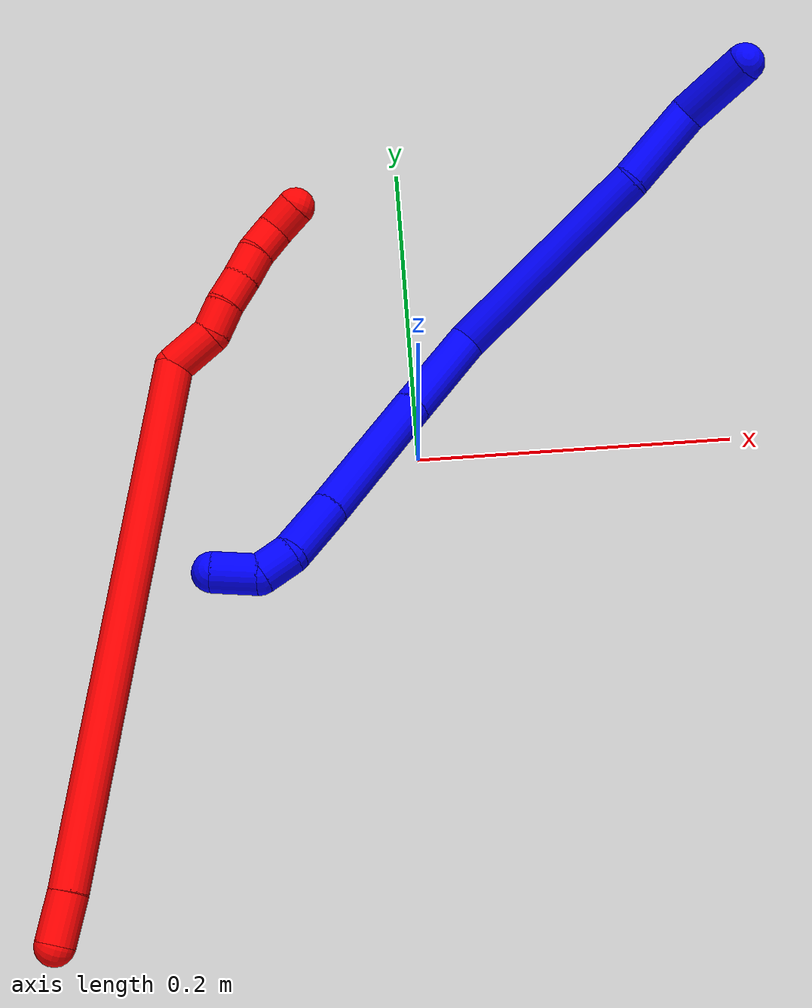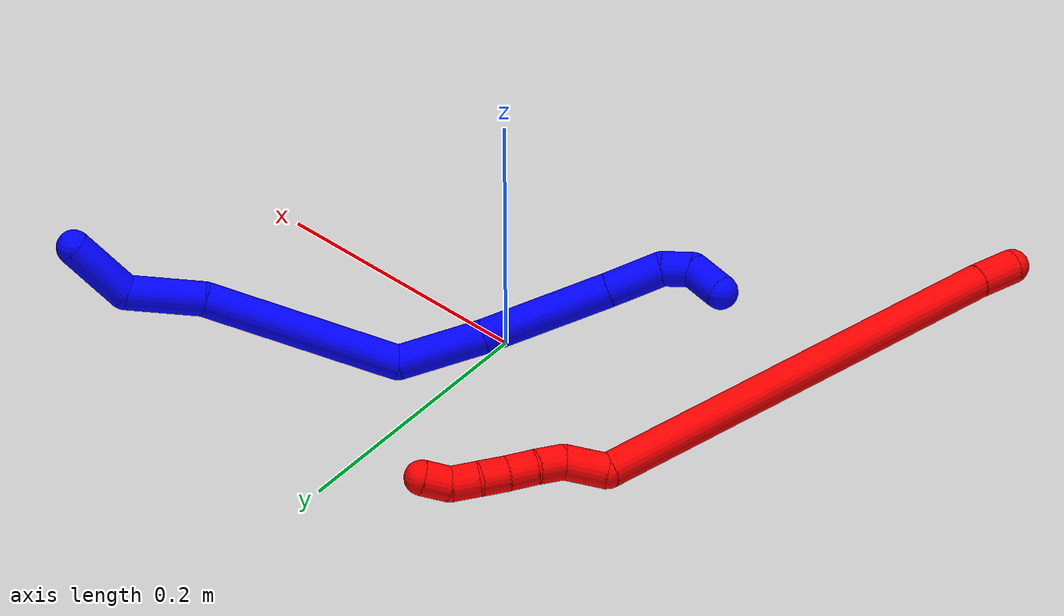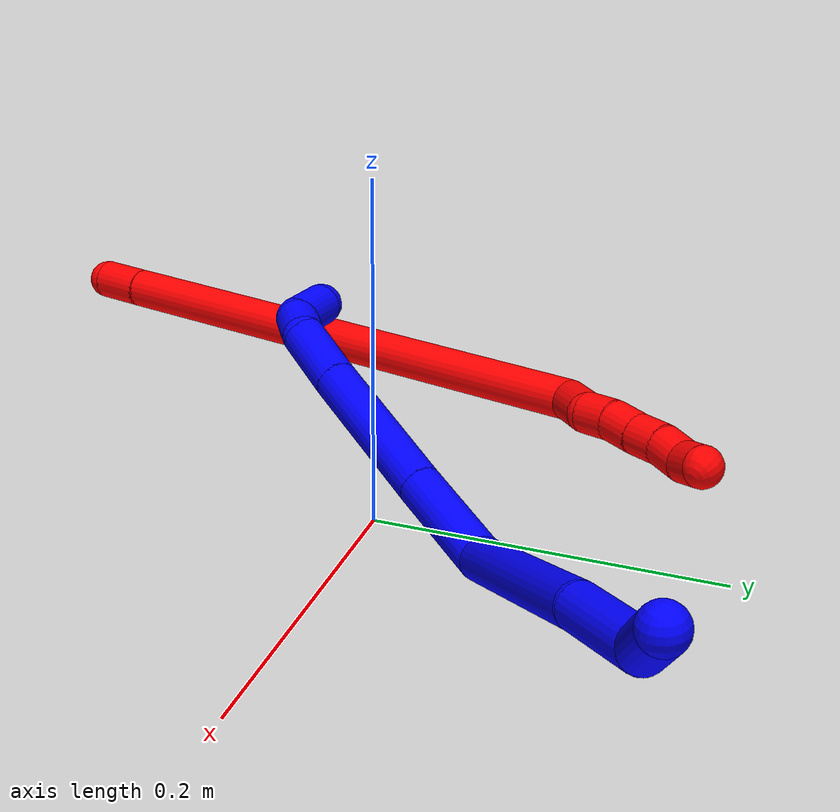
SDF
<sdf version="1.7">
 <world name="default">
  <plugin name="TubeGeneratorPlugin" filename="libtube_generator_plugin.so"/>
  <model name="photoneo_s_sensor">
   <static>1</static>
   <pose>0 0 2 1.57079 1.57079 3.14159</pose>
   <link name="link">
    <inertial><mass>0.1</mass></inertial>
    <sensor name="sensor" type="depth">
     <update_rate>30</update_rate>
     <camera>
      <horizontal_fov>1.22</horizontal_fov>
      <image><width>1920</width><height>1200</height><format>B8G8R8</format></image>
      <clip><near>0.1</near><far>4</far></clip>
      <depth_camera><output>points</output></depth_camera>
     </camera>
     <plugin name="camera_plugin" filename="libgazebo_ros_depth_camera.so">
      <baseline>0.2</baseline>
      <alwaysOn>1</alwaysOn>
      <updateRate>0.0</updateRate>
      <cameraName>camera_ir</cameraName>
      <imageTopicName>/camera/color/image_raw</imageTopicName>
      <cameraInfoTopicName>/camera/color/camera_info</cameraInfoTopicName>
      <depthImageTopicName>/camera/depth/image_raw</depthImageTopicName>
      <depthImageCameraInfoTopicName>/camera/depth/camera_info</depthImageCameraInfoTopicName>
      <pointCloudTopicName>/camera/depth/points</pointCloudTopicName>
      <frameName>fr_optical</frameName>
      <pointCloudCutoff>0.1</pointCloudCutoff>
      <pointCloudCutoffMax>2.0</pointCloudCutoffMax>
      <distortionK1>0</distortionK1>
      <distortionK2>0</distortionK2>
      <distortionK3>0</distortionK3>
      <distortionT1>0</distortionT1>
      <distortionT2>0</distortionT2>
      <CxPrime>0</CxPrime>
      <Cx>0</Cx>
      <Cy>0</Cy>
      <focalLength>0</focalLength>
      <hackBaseline>0</hackBaseline>
     </plugin>
    </sensor>
   </link>
  </model>
  <gravity>0 0 -9.8</gravity>
  <magnetic_field>6e-06 2.3e-05 -4.2e-05</magnetic_field>
  <atmosphere type="adiabatic"/>
  <physics name="default_physics" default="0" type="ode">
   <max_step_size>0.003</max_step_size>
   <real_time_factor>1</real_time_factor>
   <real_time_update_rate>1000</real_time_update_rate>
   <max_contacts>10000</max_contacts>
   <ode>
    <solver>
     <type>quick</type>
     <iters>100</iters>
     <sor>1.3</sor>
     <use_dynamic_moi_rescaling>0</use_dynamic_moi_rescaling>
    </solver>
    <constraints>
     <contact_max_correcting_vel>0</contact_max_correcting_vel>
     <contact_surface_layer>0.001</contact_surface_layer>
     <cfm>0</cfm>
     <erp>0.2</erp>
    </constraints>
   </ode>
  </physics>
  <scene><ambient>0.4 0.4 0.4 1</ambient><background>0.7 0.7 0.7 1</background><shadows>0</shadows></scene>
  <audio><device>default</device></audio>
  <spherical_coordinates>
   <surface_model>EARTH_WGS84</surface_model>
   <latitude_deg>0</latitude_deg>
   <longitude_deg>0</longitude_deg>
   <elevation>0</elevation>
   <heading_deg>0</heading_deg>
  </spherical_coordinates>
  <model name="bin">
   <static>1</static>
   <link name="bottom">
    <collision name="collision-bottom">
     <pose>0 0 -0.01 0 -0 0</pose>
     <geometry><box><size>0.8 0.6 0.02</size></box></geometry>
     <surface>
      <friction><ode><mu>100</mu><mu2>100</mu2></ode></friction>
      <contact><collide_bitmask>65535</collide_bitmask></contact>
     </surface>
    </collision>
   </link>
   <link name="west_wall">
    <collision name="collision-west_wall">
     <pose>-0.41 0 0.1 0 -0 0</pose>
     <geometry><box><size>0.02 0.6 0.2</size></box></geometry>
     <surface>
      <friction><ode><mu>100</mu><mu2>100</mu2></ode></friction>
      <contact><collide_bitmask>65535</collide_bitmask></contact>
     </surface>
    </collision>
   </link>
   <link name="east_wall">
    <collision name="collision-east_wall">
     <pose>0.41 0 0.1 0 -0 0</pose>
     <geometry><box><size>0.02 0.6 0.2</size></box></geometry>
     <surface>
      <friction><ode><mu>100</mu><mu2>100</mu2></ode></friction>
      <contact><collide_bitmask>65535</collide_bitmask></contact>
     </surface>
    </collision>
   </link>
   <link name="south_wall">
    <collision name="collision-south_wall">
     <pose>0 -0.31 0.1 0 -0 0</pose>
     <geometry><box><size>0.8 0.02 0.2</size></box></geometry>
     <surface>
      <friction><ode><mu>100</mu><mu2>100</mu2></ode></friction>
      <contact><collide_bitmask>65535</collide_bitmask></contact>
     </surface>
    </collision>
   </link>
   <link name="north_wall">
    <collision name="collision-north_wall">
     <pose>0 0.31 0.1 0 -0 0</pose>
     <geometry><box><size>0.8 0.02 0.2</size></box></geometry>
     <surface>
      <friction><ode><mu>100</mu><mu2>100</mu2></ode></friction>
      <contact><collide_bitmask>65535</collide_bitmask></contact>
     </surface>
    </collision>
   </link>
  </model>
  <model name="1">
   <static>0</static>
   <link name="1">
    <collision name="collision-cylinder-e_1_1_4">
     <pose>-0.015782 -0.008339 -0.016899 2.68317 -0.697182 -2.00018</pose>
     <geometry><cylinder><radius>0.0125</radius><length>0.04916</length></cylinder></geometry>
     <surface>
      <friction><ode><mu>1.16</mu><mu2>1.16</mu2><slip1>0</slip1><slip2>0</slip2></ode></friction>
      <contact><ode><kp>1e+06</kp><kd>1</kd><max_vel>0</max_vel><min_depth>0.001</min_depth></ode></contact>
     </surface>
    </collision>
    <visual name="visual-cylinder-e_1_1_4">
     <pose>-0.015782 -0.008339 -0.016899 2.68317 -0.697182 -2.00018</pose>
     <geometry><cylinder><radius>0.0125</radius><length>0.04916</length></cylinder></geometry>
     <material><ambient>0 0 1 1</ambient></material>
    </visual>
    <collision name="collision-cylinder-e_2_4_5">
     <pose>-0.050862 -0.036252 -0.038655 1.81405 -0.763366 -0.948222</pose>
     <geometry><cylinder><radius>0.0125</radius><length>0.055825</length></cylinder></geometry>
     <surface>
      <friction><ode><mu>1.16</mu><mu2>1.16</mu2><slip1>0</slip1><slip2>0</slip2></ode></friction>
      <contact><ode><kp>1e+06</kp><kd>1</kd><max_vel>0</max_vel><min_depth>0.001</min_depth></ode></contact>
     </surface>
    </collision>
    <visual name="visual-cylinder-e_2_4_5">
     <pose>-0.050862 -0.036252 -0.038655 1.81405 -0.763366 -0.948222</pose>
     <geometry><cylinder><radius>0.0125</radius><length>0.055825</length></cylinder></geometry>
     <material><ambient>0 0 1 1</ambient></material>
    </visual>
    <collision name="collision-cylinder-e_3_5_6">
     <pose>-0.123669 -0.097646 -0.069973 2.13493 -0.824422 -1.34227</pose>
     <geometry><cylinder><radius>0.0125</radius><length>0.145772</length></cylinder></geometry>
     <surface>
      <friction><ode><mu>1.16</mu><mu2>1.16</mu2><slip1>0</slip1><slip2>0</slip2></ode></friction>
      <contact><ode><kp>1e+06</kp><kd>1</kd><max_vel>0</max_vel><min_depth>0.001</min_depth></ode></contact>
     </surface>
    </collision>
    <visual name="visual-cylinder-e_3_5_6">
     <pose>-0.123669 -0.097646 -0.069973 2.13493 -0.824422 -1.34227</pose>
     <geometry><cylinder><radius>0.0125</radius><length>0.145772</length></cylinder></geometry>
     <material><ambient>0 0 1 1</ambient></material>
    </visual>
    <collision name="collision-cylinder-e_4_6_7">
     <pose>-0.197045 -0.163179 -0.088694 1.25531 -0.672562 -0.496755</pose>
     <geometry><cylinder><radius>0.0125</radius><length>0.063778</length></cylinder></geometry>
     <surface>
      <friction><ode><mu>1.16</mu><mu2>1.16</mu2><slip1>0</slip1><slip2>0</slip2></ode></friction>
      <contact><ode><kp>1e+06</kp><kd>1</kd><max_vel>0</max_vel><min_depth>0.001</min_depth></ode></contact>
     </surface>
    </collision>
    <visual name="visual-cylinder-e_4_6_7">
     <pose>-0.197045 -0.163179 -0.088694 1.25531 -0.672562 -0.496755</pose>
     <geometry><cylinder><radius>0.0125</radius><length>0.063778</length></cylinder></geometry>
     <material><ambient>0 0 1 1</ambient></material>
    </visual>
    <collision name="collision-cylinder-e_5_7_8">
     <pose>-0.244999 -0.221686 -0.066657 1.18091 -0.641365 -0.438076</pose>
     <geometry><cylinder><radius>0.0125</radius><length>0.093891</length></cylinder></geometry>
     <surface>
      <friction><ode><mu>1.16</mu><mu2>1.16</mu2><slip1>0</slip1><slip2>0</slip2></ode></friction>
      <contact><ode><kp>1e+06</kp><kd>1</kd><max_vel>0</max_vel><min_depth>0.001</min_depth></ode></contact>
     </surface>
    </collision>
    <visual name="visual-cylinder-e_5_7_8">
     <pose>-0.244999 -0.221686 -0.066657 1.18091 -0.641365 -0.438076</pose>
     <geometry><cylinder><radius>0.0125</radius><length>0.093891</length></cylinder></geometry>
     <material><ambient>0 0 1 1</ambient></material>
    </visual>
    <collision name="collision-cylinder-e_6_8_9">
     <pose>-0.28537 -0.271192 -0.045336 1.12542 -0.645775 -0.415978</pose>
     <geometry><cylinder><radius>0.0125</radius><length>0.040826</length></cylinder></geometry>
     <surface>
      <friction><ode><mu>1.16</mu><mu2>1.16</mu2><slip1>0</slip1><slip2>0</slip2></ode></friction>
      <contact><ode><kp>1e+06</kp><kd>1</kd><max_vel>0</max_vel><min_depth>0.001</min_depth></ode></contact>
     </surface>
    </collision>
    <visual name="visual-cylinder-e_6_8_9">
     <pose>-0.28537 -0.271192 -0.045336 1.12542 -0.645775 -0.415978</pose>
     <geometry><cylinder><radius>0.0125</radius><length>0.040826</length></cylinder></geometry>
     <material><ambient>0 0 1 1</ambient></material>
    </visual>
    <collision name="collision-cylinder-e_7_9_10">
     <pose>-0.306958 -0.291809 -0.037645 1.45817 -1.00234 -0.910189</pose>
     <geometry><cylinder><radius>0.0125</radius><length>0.022078</length></cylinder></geometry>
     <surface>
      <friction><ode><mu>1.16</mu><mu2>1.16</mu2><slip1>0</slip1><slip2>0</slip2></ode></friction>
      <contact><ode><kp>1e+06</kp><kd>1</kd><max_vel>0</max_vel><min_depth>0.001</min_depth></ode></contact>
     </surface>
    </collision>
    <visual name="visual-cylinder-e_7_9_10">
     <pose>-0.306958 -0.291809 -0.037645 1.45817 -1.00234 -0.910189</pose>
     <geometry><cylinder><radius>0.0125</radius><length>0.022078</length></cylinder></geometry>
     <material><ambient>0 0 1 1</ambient></material>
    </visual>
    <collision name="collision-cylinder-e_8_10_2">
     <pose>-0.33037 -0.295768 -0.038604 -2.26704 -1.39296 2.12219</pose>
     <geometry><cylinder><radius>0.0125</radius><length>0.02867</length></cylinder></geometry>
     <surface>
      <friction><ode><mu>1.16</mu><mu2>1.16</mu2><slip1>0</slip1><slip2>0</slip2></ode></friction>
      <contact><ode><kp>1e+06</kp><kd>1</kd><max_vel>0</max_vel><min_depth>0.001</min_depth></ode></contact>
     </surface>
    </collision>
    <visual name="visual-cylinder-e_8_10_2">
     <pose>-0.33037 -0.295768 -0.038604 -2.26704 -1.39296 2.12219</pose>
     <geometry><cylinder><radius>0.0125</radius><length>0.02867</length></cylinder></geometry>
     <material><ambient>0 0 1 1</ambient></material>
    </visual>
    <collision name="collision-sphere-2">
     <pose>-0.344479 -0.293822 -0.04023 0 -0 0</pose>
     <geometry><sphere><radius>0.0125</radius></sphere></geometry>
     <surface>
      <friction><ode><mu>1.16</mu><mu2>1.16</mu2><slip1>0</slip1><slip2>0</slip2></ode></friction>
      <contact><ode><kp>1e+06</kp><kd>1</kd><max_vel>0</max_vel><min_depth>0.001</min_depth></ode></contact>
     </surface>
    </collision>
    <visual name="visual-sphere-2">
     <pose>-0.344479 -0.293822 -0.04023 0 -0 0</pose>
     <geometry><sphere><radius>0.0125</radius></sphere></geometry>
     <material><ambient>0 0 1 1</ambient></material>
    </visual>
    <collision name="collision-sphere-10">
     <pose>-0.316261 -0.297714 -0.036977 0 -0 0</pose>
     <geometry><sphere><radius>0.0125</radius></sphere></geometry>
     <surface>
      <friction><ode><mu>1.16</mu><mu2>1.16</mu2><slip1>0</slip1><slip2>0</slip2></ode></friction>
      <contact><ode><kp>1e+06</kp><kd>1</kd><max_vel>0</max_vel><min_depth>0.001</min_depth></ode></contact>
     </surface>
    </collision>
    <visual name="visual-sphere-10">
     <pose>-0.316261 -0.297714 -0.036977 0 -0 0</pose>
     <geometry><sphere><radius>0.0125</radius></sphere></geometry>
     <material><ambient>0 0 1 1</ambient></material>
    </visual>
    <collision name="collision-sphere-9">
     <pose>-0.297655 -0.285904 -0.038313 0 -0 0</pose>
     <geometry><sphere><radius>0.0125</radius></sphere></geometry>
     <surface>
      <friction><ode><mu>1.16</mu><mu2>1.16</mu2><slip1>0</slip1><slip2>0</slip2></ode></friction>
      <contact><ode><kp>1e+06</kp><kd>1</kd><max_vel>0</max_vel><min_depth>0.001</min_depth></ode></contact>
     </surface>
    </collision>
    <visual name="visual-sphere-9">
     <pose>-0.297655 -0.285904 -0.038313 0 -0 0</pose>
     <geometry><sphere><radius>0.0125</radius></sphere></geometry>
     <material><ambient>0 0 1 1</ambient></material>
    </visual>
    <collision name="collision-sphere-4">
     <pose>-0.031564 -0.016679 -0.033798 0 -0 0</pose>
     <geometry><sphere><radius>0.0125</radius></sphere></geometry>
     <surface>
      <friction><ode><mu>1.16</mu><mu2>1.16</mu2><slip1>0</slip1><slip2>0</slip2></ode></friction>
      <contact><ode><kp>1e+06</kp><kd>1</kd><max_vel>0</max_vel><min_depth>0.001</min_depth></ode></contact>
     </surface>
    </collision>
    <visual name="visual-sphere-4">
     <pose>-0.031564 -0.016679 -0.033798 0 -0 0</pose>
     <geometry><sphere><radius>0.0125</radius></sphere></geometry>
     <material><ambient>0 0 1 1</ambient></material>
    </visual>
    <collision name="collision-sphere-1">
     <geometry><sphere><radius>0.0125</radius></sphere></geometry>
     <surface>
      <friction><ode><mu>1.16</mu><mu2>1.16</mu2><slip1>0</slip1><slip2>0</slip2></ode></friction>
      <contact><ode><kp>1e+06</kp><kd>1</kd><max_vel>0</max_vel><min_depth>0.001</min_depth></ode></contact>
     </surface>
    </collision>
    <visual name="visual-sphere-1">
     <geometry><sphere><radius>0.0125</radius></sphere></geometry>
     <material><ambient>0 0 1 1</ambient></material>
    </visual>
    <collision name="collision-sphere-8">
     <pose>-0.273086 -0.25648 -0.052359 0 -0 0</pose>
     <geometry><sphere><radius>0.0125</radius></sphere></geometry>
     <surface>
      <friction><ode><mu>1.16</mu><mu2>1.16</mu2><slip1>0</slip1><slip2>0</slip2></ode></friction>
      <contact><ode><kp>1e+06</kp><kd>1</kd><max_vel>0</max_vel><min_depth>0.001</min_depth></ode></contact>
     </surface>
    </collision>
    <visual name="visual-sphere-8">
     <pose>-0.273086 -0.25648 -0.052359 0 -0 0</pose>
     <geometry><sphere><radius>0.0125</radius></sphere></geometry>
     <material><ambient>0 0 1 1</ambient></material>
    </visual>
    <collision name="collision-sphere-5">
     <pose>-0.070159 -0.055826 -0.043513 0 -0 0</pose>
     <geometry><sphere><radius>0.0125</radius></sphere></geometry>
     <surface>
      <friction><ode><mu>1.16</mu><mu2>1.16</mu2><slip1>0</slip1><slip2>0</slip2></ode></friction>
      <contact><ode><kp>1e+06</kp><kd>1</kd><max_vel>0</max_vel><min_depth>0.001</min_depth></ode></contact>
     </surface>
    </collision>
    <visual name="visual-sphere-5">
     <pose>-0.070159 -0.055826 -0.043513 0 -0 0</pose>
     <geometry><sphere><radius>0.0125</radius></sphere></geometry>
     <material><ambient>0 0 1 1</ambient></material>
    </visual>
    <collision name="collision-sphere-6">
     <pose>-0.177178 -0.139466 -0.096434 0 -0 0</pose>
     <geometry><sphere><radius>0.0125</radius></sphere></geometry>
     <surface>
      <friction><ode><mu>1.16</mu><mu2>1.16</mu2><slip1>0</slip1><slip2>0</slip2></ode></friction>
      <contact><ode><kp>1e+06</kp><kd>1</kd><max_vel>0</max_vel><min_depth>0.001</min_depth></ode></contact>
     </surface>
    </collision>
    <visual name="visual-sphere-6">
     <pose>-0.177178 -0.139466 -0.096434 0 -0 0</pose>
     <geometry><sphere><radius>0.0125</radius></sphere></geometry>
     <material><ambient>0 0 1 1</ambient></material>
    </visual>
    <collision name="collision-sphere-7">
     <pose>-0.216912 -0.186893 -0.080954 0 -0 0</pose>
     <geometry><sphere><radius>0.0125</radius></sphere></geometry>
     <surface>
      <friction><ode><mu>1.16</mu><mu2>1.16</mu2><slip1>0</slip1><slip2>0</slip2></ode></friction>
      <contact><ode><kp>1e+06</kp><kd>1</kd><max_vel>0</max_vel><min_depth>0.001</min_depth></ode></contact>
     </surface>
    </collision>
    <visual name="visual-sphere-7">
     <pose>-0.216912 -0.186893 -0.080954 0 -0 0</pose>
     <geometry><sphere><radius>0.0125</radius></sphere></geometry>
     <material><ambient>0 0 1 1</ambient></material>
    </visual>
    <inertial>
     <pose>-0.170224 -0.147766 -0.057786 0 -0 0</pose>
     <mass>0.5</mass>
     <inertia>
      <ixx>-0.000137</ixx>
      <ixy>0</ixy>
      <ixz>0</ixz>
      <iyy>-4.6e-05</iyy>
      <iyz>0</iyz>
      <izz>0.000522</izz>
     </inertia>
    </inertial>
   </link>
   <pose>0.217929 0.208855 0.107803 0.052561 0.040839 0.001121</pose>
  </model>
  <model name="2">
   <static>0</static>
   <link name="2">
    <collision name="collision-cylinder-e_1_1_4">
     <pose>0.001881 0.015504 0.001124 -1.49846 0.120404 -0.112013</pose>
     <geometry><cylinder><radius>0.0125</radius><length>0.031316</length></cylinder></geometry>
     <surface>
      <friction><ode><mu>1.16</mu><mu2>1.16</mu2><slip1>0</slip1><slip2>0</slip2></ode></friction>
      <contact><ode><kp>1e+06</kp><kd>1</kd><max_vel>0</max_vel><min_depth>0.001</min_depth></ode></contact>
     </surface>
    </collision>
    <visual name="visual-cylinder-e_1_1_4">
     <pose>0.001881 0.015504 0.001124 -1.49846 0.120404 -0.112013</pose>
     <geometry><cylinder><radius>0.0125</radius><length>0.031316</length></cylinder></geometry>
     <material><ambient>1 0 0 1</ambient></material>
    </visual>
    <collision name="collision-cylinder-e_2_4_5">
     <pose>0.017805 0.196711 0.022025 -1.452 0.083958 -0.074543</pose>
     <geometry><cylinder><radius>0.0125</radius><length>0.334937</length></cylinder></geometry>
     <surface>
      <friction><ode><mu>1.16</mu><mu2>1.16</mu2><slip1>0</slip1><slip2>0</slip2></ode></friction>
      <contact><ode><kp>1e+06</kp><kd>1</kd><max_vel>0</max_vel><min_depth>0.001</min_depth></ode></contact>
     </surface>
    </collision>
    <visual name="visual-cylinder-e_2_4_5">
     <pose>0.017805 0.196711 0.022025 -1.452 0.083958 -0.074543</pose>
     <geometry><cylinder><radius>0.0125</radius><length>0.334937</length></cylinder></geometry>
     <material><ambient>1 0 0 1</ambient></material>
    </visual>
    <collision name="collision-cylinder-e_3_5_6">
     <pose>0.038399 0.374212 0.034069 -2.15103 0.434646 -0.776074</pose>
     <geometry><cylinder><radius>0.0125</radius><length>0.031106</length></cylinder></geometry>
     <surface>
      <friction><ode><mu>1.16</mu><mu2>1.16</mu2><slip1>0</slip1><slip2>0</slip2></ode></friction>
      <contact><ode><kp>1e+06</kp><kd>1</kd><max_vel>0</max_vel><min_depth>0.001</min_depth></ode></contact>
     </surface>
    </collision>
    <visual name="visual-cylinder-e_3_5_6">
     <pose>0.038399 0.374212 0.034069 -2.15103 0.434646 -0.776074</pose>
     <geometry><cylinder><radius>0.0125</radius><length>0.031106</length></cylinder></geometry>
     <material><ambient>1 0 0 1</ambient></material>
    </visual>
    <collision name="collision-cylinder-e_4_6_7">
     <pose>0.047627 0.396139 0.025282 -1.67435 0.257252 -0.28501</pose>
     <geometry><cylinder><radius>0.0125</radius><length>0.02106</length></cylinder></geometry>
     <surface>
      <friction><ode><mu>1.16</mu><mu2>1.16</mu2><slip1>0</slip1><slip2>0</slip2></ode></friction>
      <contact><ode><kp>1e+06</kp><kd>1</kd><max_vel>0</max_vel><min_depth>0.001</min_depth></ode></contact>
     </surface>
    </collision>
    <visual name="visual-cylinder-e_4_6_7">
     <pose>0.047627 0.396139 0.025282 -1.67435 0.257252 -0.28501</pose>
     <geometry><cylinder><radius>0.0125</radius><length>0.02106</length></cylinder></geometry>
     <material><ambient>1 0 0 1</ambient></material>
    </visual>
    <collision name="collision-cylinder-e_5_7_8">
     <pose>0.05175 0.416284 0.021882 -1.80099 0.139443 -0.175731</pose>
     <geometry><cylinder><radius>0.0125</radius><length>0.020777</length></cylinder></geometry>
     <surface>
      <friction><ode><mu>1.16</mu><mu2>1.16</mu2><slip1>0</slip1><slip2>0</slip2></ode></friction>
      <contact><ode><kp>1e+06</kp><kd>1</kd><max_vel>0</max_vel><min_depth>0.001</min_depth></ode></contact>
     </surface>
    </collision>
    <visual name="visual-cylinder-e_5_7_8">
     <pose>0.05175 0.416284 0.021882 -1.80099 0.139443 -0.175731</pose>
     <geometry><cylinder><radius>0.0125</radius><length>0.020777</length></cylinder></geometry>
     <material><ambient>1 0 0 1</ambient></material>
    </visual>
    <collision name="collision-cylinder-e_6_8_9">
     <pose>0.055252 0.43595 0.01773 -1.75576 0.206656 -0.248512</pose>
     <geometry><cylinder><radius>0.0125</radius><length>0.02006</length></cylinder></geometry>
     <surface>
      <friction><ode><mu>1.16</mu><mu2>1.16</mu2><slip1>0</slip1><slip2>0</slip2></ode></friction>
      <contact><ode><kp>1e+06</kp><kd>1</kd><max_vel>0</max_vel><min_depth>0.001</min_depth></ode></contact>
     </surface>
    </collision>
    <visual name="visual-cylinder-e_6_8_9">
     <pose>0.055252 0.43595 0.01773 -1.75576 0.206656 -0.248512</pose>
     <geometry><cylinder><radius>0.0125</radius><length>0.02006</length></cylinder></geometry>
     <material><ambient>1 0 0 1</ambient></material>
    </visual>
    <collision name="collision-cylinder-e_7_9_10">
     <pose>0.058419 0.455101 0.012471 -1.91936 0.10929 -0.155838</pose>
     <geometry><cylinder><radius>0.0125</radius><length>0.020341</length></cylinder></geometry>
     <surface>
      <friction><ode><mu>1.16</mu><mu2>1.16</mu2><slip1>0</slip1><slip2>0</slip2></ode></friction>
      <contact><ode><kp>1e+06</kp><kd>1</kd><max_vel>0</max_vel><min_depth>0.001</min_depth></ode></contact>
     </surface>
    </collision>
    <visual name="visual-cylinder-e_7_9_10">
     <pose>0.058419 0.455101 0.012471 -1.91936 0.10929 -0.155838</pose>
     <geometry><cylinder><radius>0.0125</radius><length>0.020341</length></cylinder></geometry>
     <material><ambient>1 0 0 1</ambient></material>
    </visual>
    <collision name="collision-cylinder-e_8_10_2">
     <pose>0.0647 0.472519 0.005191 -2.02117 0.53165 -0.819056</pose>
     <geometry><cylinder><radius>0.0125</radius><length>0.020402</length></cylinder></geometry>
     <surface>
      <friction><ode><mu>1.16</mu><mu2>1.16</mu2><slip1>0</slip1><slip2>0</slip2></ode></friction>
      <contact><ode><kp>1e+06</kp><kd>1</kd><max_vel>0</max_vel><min_depth>0.001</min_depth></ode></contact>
     </surface>
    </collision>
    <visual name="visual-cylinder-e_8_10_2">
     <pose>0.0647 0.472519 0.005191 -2.02117 0.53165 -0.819056</pose>
     <geometry><cylinder><radius>0.0125</radius><length>0.020402</length></cylinder></geometry>
     <material><ambient>1 0 0 1</ambient></material>
    </visual>
    <collision name="collision-sphere-2">
     <pose>0.069871 0.480435 0.001363 0 -0 0</pose>
     <geometry><sphere><radius>0.0125</radius></sphere></geometry>
     <surface>
      <friction><ode><mu>1.16</mu><mu2>1.16</mu2><slip1>0</slip1><slip2>0</slip2></ode></friction>
      <contact><ode><kp>1e+06</kp><kd>1</kd><max_vel>0</max_vel><min_depth>0.001</min_depth></ode></contact>
     </surface>
    </collision>
    <visual name="visual-sphere-2">
     <pose>0.069871 0.480435 0.001363 0 -0 0</pose>
     <geometry><sphere><radius>0.0125</radius></sphere></geometry>
     <material><ambient>1 0 0 1</ambient></material>
    </visual>
    <collision name="collision-sphere-10">
     <pose>0.059529 0.464603 0.009018 0 -0 0</pose>
     <geometry><sphere><radius>0.0125</radius></sphere></geometry>
     <surface>
      <friction><ode><mu>1.16</mu><mu2>1.16</mu2><slip1>0</slip1><slip2>0</slip2></ode></friction>
      <contact><ode><kp>1e+06</kp><kd>1</kd><max_vel>0</max_vel><min_depth>0.001</min_depth></ode></contact>
     </surface>
    </collision>
    <visual name="visual-sphere-10">
     <pose>0.059529 0.464603 0.009018 0 -0 0</pose>
     <geometry><sphere><radius>0.0125</radius></sphere></geometry>
     <material><ambient>1 0 0 1</ambient></material>
    </visual>
    <collision name="collision-sphere-9">
     <pose>0.05731 0.445599 0.015924 0 -0 0</pose>
     <geometry><sphere><radius>0.0125</radius></sphere></geometry>
     <surface>
      <friction><ode><mu>1.16</mu><mu2>1.16</mu2><slip1>0</slip1><slip2>0</slip2></ode></friction>
      <contact><ode><kp>1e+06</kp><kd>1</kd><max_vel>0</max_vel><min_depth>0.001</min_depth></ode></contact>
     </surface>
    </collision>
    <visual name="visual-sphere-9">
     <pose>0.05731 0.445599 0.015924 0 -0 0</pose>
     <geometry><sphere><radius>0.0125</radius></sphere></geometry>
     <material><ambient>1 0 0 1</ambient></material>
    </visual>
    <collision name="collision-sphere-4">
     <pose>0.003762 0.031008 0.002247 0 -0 0</pose>
     <geometry><sphere><radius>0.0125</radius></sphere></geometry>
     <surface>
      <friction><ode><mu>1.16</mu><mu2>1.16</mu2><slip1>0</slip1><slip2>0</slip2></ode></friction>
      <contact><ode><kp>1e+06</kp><kd>1</kd><max_vel>0</max_vel><min_depth>0.001</min_depth></ode></contact>
     </surface>
    </collision>
    <visual name="visual-sphere-4">
     <pose>0.003762 0.031008 0.002247 0 -0 0</pose>
     <geometry><sphere><radius>0.0125</radius></sphere></geometry>
     <material><ambient>1 0 0 1</ambient></material>
    </visual>
    <collision name="collision-sphere-1">
     <geometry><sphere><radius>0.0125</radius></sphere></geometry>
     <surface>
      <friction><ode><mu>1.16</mu><mu2>1.16</mu2><slip1>0</slip1><slip2>0</slip2></ode></friction>
      <contact><ode><kp>1e+06</kp><kd>1</kd><max_vel>0</max_vel><min_depth>0.001</min_depth></ode></contact>
     </surface>
    </collision>
    <visual name="visual-sphere-1">
     <geometry><sphere><radius>0.0125</radius></sphere></geometry>
     <material><ambient>1 0 0 1</ambient></material>
    </visual>
    <collision name="collision-sphere-8">
     <pose>0.053194 0.4263 0.019535 0 -0 0</pose>
     <geometry><sphere><radius>0.0125</radius></sphere></geometry>
     <surface>
      <friction><ode><mu>1.16</mu><mu2>1.16</mu2><slip1>0</slip1><slip2>0</slip2></ode></friction>
      <contact><ode><kp>1e+06</kp><kd>1</kd><max_vel>0</max_vel><min_depth>0.001</min_depth></ode></contact>
     </surface>
    </collision>
    <visual name="visual-sphere-8">
     <pose>0.053194 0.4263 0.019535 0 -0 0</pose>
     <geometry><sphere><radius>0.0125</radius></sphere></geometry>
     <material><ambient>1 0 0 1</ambient></material>
    </visual>
    <collision name="collision-sphere-5">
     <pose>0.031849 0.362414 0.041802 0 -0 0</pose>
     <geometry><sphere><radius>0.0125</radius></sphere></geometry>
     <surface>
      <friction><ode><mu>1.16</mu><mu2>1.16</mu2><slip1>0</slip1><slip2>0</slip2></ode></friction>
      <contact><ode><kp>1e+06</kp><kd>1</kd><max_vel>0</max_vel><min_depth>0.001</min_depth></ode></contact>
     </surface>
    </collision>
    <visual name="visual-sphere-5">
     <pose>0.031849 0.362414 0.041802 0 -0 0</pose>
     <geometry><sphere><radius>0.0125</radius></sphere></geometry>
     <material><ambient>1 0 0 1</ambient></material>
    </visual>
    <collision name="collision-sphere-6">
     <pose>0.044948 0.38601 0.026335 0 -0 0</pose>
     <geometry><sphere><radius>0.0125</radius></sphere></geometry>
     <surface>
      <friction><ode><mu>1.16</mu><mu2>1.16</mu2><slip1>0</slip1><slip2>0</slip2></ode></friction>
      <contact><ode><kp>1e+06</kp><kd>1</kd><max_vel>0</max_vel><min_depth>0.001</min_depth></ode></contact>
     </surface>
    </collision>
    <visual name="visual-sphere-6">
     <pose>0.044948 0.38601 0.026335 0 -0 0</pose>
     <geometry><sphere><radius>0.0125</radius></sphere></geometry>
     <material><ambient>1 0 0 1</ambient></material>
    </visual>
    <collision name="collision-sphere-7">
     <pose>0.050306 0.406268 0.02423 0 -0 0</pose>
     <geometry><sphere><radius>0.0125</radius></sphere></geometry>
     <surface>
      <friction><ode><mu>1.16</mu><mu2>1.16</mu2><slip1>0</slip1><slip2>0</slip2></ode></friction>
      <contact><ode><kp>1e+06</kp><kd>1</kd><max_vel>0</max_vel><min_depth>0.001</min_depth></ode></contact>
     </surface>
    </collision>
    <visual name="visual-sphere-7">
     <pose>0.050306 0.406268 0.02423 0 -0 0</pose>
     <geometry><sphere><radius>0.0125</radius></sphere></geometry>
     <material><ambient>1 0 0 1</ambient></material>
    </visual>
    <inertial>
     <pose>0.025824 0.245292 0.020348 0 -0 0</pose>
     <mass>0.5</mass>
     <inertia>
      <ixx>0.002904</ixx>
      <ixy>0</ixy>
      <ixz>0</ixz>
      <iyy>0.000189</iyy>
      <iyz>0</iyz>
      <izz>-0.003392</izz>
     </inertia>
    </inertial>
   </link>
   <pose>-0.233883 -0.287644 0.012011 -0.3721 -1.29141 0.042889</pose>
  </model>
 </world>
</sdf>
